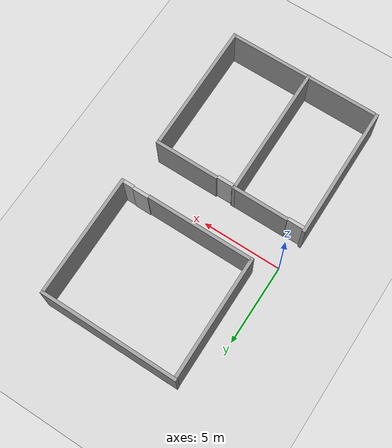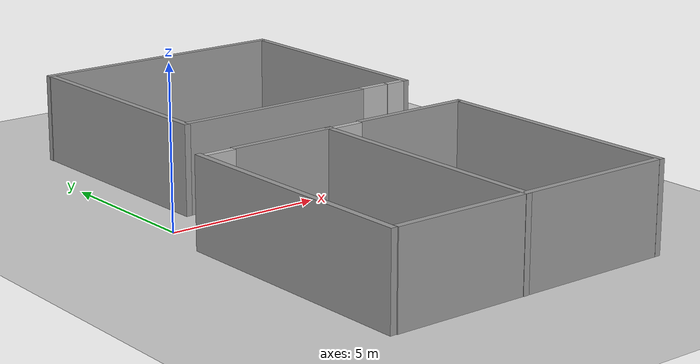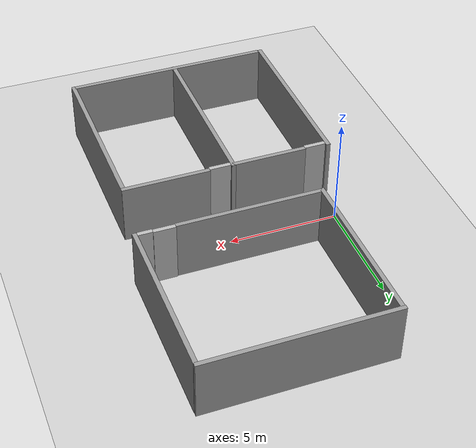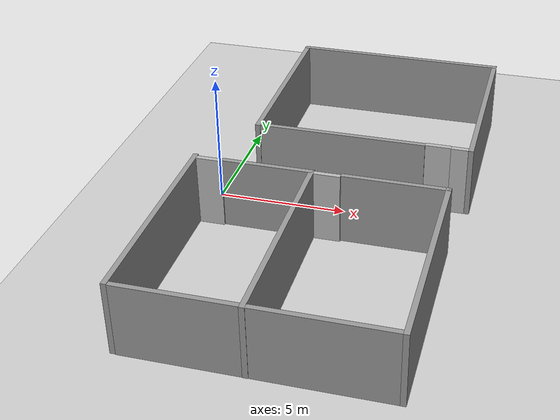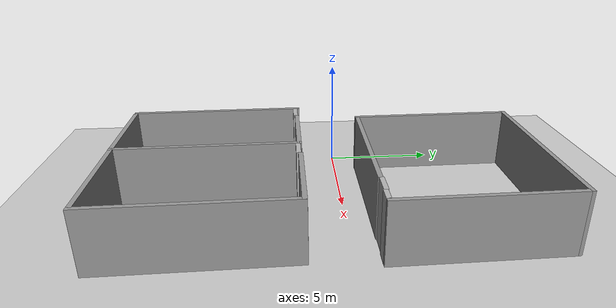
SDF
<sdf version="1.6">
 <world name="default">
  <light name="sun" type="directional">
   <pose>0 0 10 0 -0 0</pose>
   <diffuse>0.8 0.8 0.8 1</diffuse>
   <specular>0.2 0.2 0.2 1</specular>
   <attenuation>
    <range>1000</range>
    <constant>0.9</constant>
    <linear>0.01</linear>
    <quadratic>0.001</quadratic>
   </attenuation>
   <direction>-0.5 0.1 -0.9</direction>
  </light>
  <model name="ground_plane">
   <static>1</static>
   <link name="link">
    <collision name="collision">
     <geometry><plane><normal>0 0 1</normal><size>100 100</size></plane></geometry>
     <surface><friction><ode><mu>100</mu><mu2>50</mu2></ode></friction></surface>
    </collision>
    <visual name="visual">
     <cast_shadows>0</cast_shadows>
     <geometry><plane><normal>0 0 1</normal><size>100 100</size></plane></geometry>
     <material>
      <script><uri>file://media/materials/scripts/gazebo.material</uri><name>Gazebo/Grey</name></script>
     </material>
    </visual>
    <velocity_decay><linear>0</linear><angular>0</angular></velocity_decay>
   </link>
  </model>
  <model name="920_outside_wall">
   <static>1</static>
   <link name="link">
    <pose>0 0 1.4 0 -0 0</pose>
    <collision name="collision"><geometry><box><size>8.58 0.2 2.8</size></box></geometry></collision>
    <visual name="visual">
     <cast_shadows>0</cast_shadows>
     <geometry><box><size>8.58 0.2 2.8</size></box></geometry>
     <material>
      <script>
       <uri>model://grey_wall/materials/scripts</uri>
       <uri>model://grey_wall/materials/textures</uri>
       <name>vrc/grey_wall</name>
      </script>
     </material>
    </visual>
    <velocity_decay><linear>0</linear><angular>0</angular></velocity_decay>
   </link>
   <pose>5.35352 8.59761 0 0 -0 0</pose>
  </model>
  <model name="901_outside_wall">
   <static>1</static>
   <link name="link">
    <pose>0 0 1.4 0 -0 0</pose>
    <collision name="collision"><geometry><box><size>9.35 0.2 2.8</size></box></geometry></collision>
    <visual name="visual">
     <cast_shadows>0</cast_shadows>
     <geometry><box><size>9.35 0.2 2.8</size></box></geometry>
     <material>
      <script>
       <uri>model://grey_wall/materials/scripts</uri>
       <uri>model://grey_wall/materials/textures</uri>
       <name>vrc/grey_wall</name>
      </script>
     </material>
    </visual>
    <velocity_decay><linear>0</linear><angular>0</angular></velocity_decay>
   </link>
   <pose>4.59033 -9.88863 0 0 -0 0</pose>
  </model>
  <model name="ElevatorSideWall">
   <static>1</static>
   <link name="link">
    <pose>0 0 1.4 0 -0 1.58</pose>
    <collision name="collision"><geometry><box><size>8.26 0.2 2.8</size></box></geometry></collision>
    <visual name="visual">
     <cast_shadows>0</cast_shadows>
     <geometry><box><size>8.26 0.2 2.8</size></box></geometry>
     <material>
      <script>
       <uri>model://grey_wall/materials/scripts</uri>
       <uri>model://grey_wall/materials/textures</uri>
       <name>vrc/grey_wall</name>
      </script>
     </material>
    </visual>
    <velocity_decay><linear>0</linear><angular>0</angular></velocity_decay>
   </link>
   <pose>4.26434 -5.87139 0 0 -0 0</pose>
  </model>
  <model name="BalconySideWall">
   <static>1</static>
   <link name="link">
    <pose>0 0 1.4 0 -0 1.58</pose>
    <collision name="collision"><geometry><box><size>7.5 0.2 2.8</size></box></geometry></collision>
    <visual name="visual">
     <cast_shadows>0</cast_shadows>
     <geometry><box><size>7.5 0.2 2.8</size></box></geometry>
     <material>
      <script>
       <uri>model://grey_wall/materials/scripts</uri>
       <uri>model://grey_wall/materials/textures</uri>
       <name>vrc/grey_wall</name>
      </script>
     </material>
    </visual>
    <velocity_decay><linear>0</linear><angular>0</angular></velocity_decay>
   </link>
   <pose>9.59178 4.78635 0 0 -0 0</pose>
  </model>
  <model name="AisleSideWall">
   <static>1</static>
   <link name="link">
    <pose>0 0 1.4 0 -0 0</pose>
    <collision name="collision"><geometry><box><size>4.02 0.2 2.8</size></box></geometry></collision>
    <visual name="visual">
     <cast_shadows>0</cast_shadows>
     <geometry><box><size>4.02 0.2 2.8</size></box></geometry>
     <material>
      <script>
       <uri>model://grey_wall/materials/scripts</uri>
       <uri>model://grey_wall/materials/textures</uri>
       <name>vrc/grey_wall</name>
      </script>
     </material>
    </visual>
    <velocity_decay><linear>0</linear><angular>0</angular></velocity_decay>
   </link>
   <pose>7.3323 -1.82785 0 0 -0 0</pose>
  </model>
  <model name="AisleSideWall_920">
   <static>1</static>
   <link name="link">
    <pose>0 0 1.4 0 -0 0</pose>
    <collision name="collision"><geometry><box><size>6.6 0.2 2.8</size></box></geometry></collision>
    <visual name="visual">
     <cast_shadows>0</cast_shadows>
     <geometry><box><size>6.6 0.2 2.8</size></box></geometry>
     <material>
      <script>
       <uri>model://grey_wall/materials/scripts</uri>
       <uri>model://grey_wall/materials/textures</uri>
       <name>vrc/grey_wall</name>
      </script>
     </material>
    </visual>
    <velocity_decay><linear>0</linear><angular>0</angular></velocity_decay>
   </link>
   <pose>4.57782 1.11977 0 0 -0 0</pose>
  </model>
  <model name="Door">
   <static>1</static>
   <link name="link">
    <pose>0 0 1.4 0 -0 0</pose>
    <collision name="collision"><geometry><box><size>1 0.2 2.8</size></box></geometry></collision>
    <visual name="visual">
     <cast_shadows>0</cast_shadows>
     <geometry><box><size>1 0.2 2.8</size></box></geometry>
     <material><script><uri>__default__</uri><name>__default__</name></script></material>
    </visual>
    <velocity_decay><linear>0</linear><angular>0</angular></velocity_decay>
   </link>
   <pose>8.3742 1.15966 0 0 -0 0</pose>
  </model>
  <model name="AisleSideSmallWall">
   <static>1</static>
   <link name="link">
    <pose>0 0 1.4 0 -0 0</pose>
    <collision name="collision"><geometry><box><size>0.66 0.2 2.8</size></box></geometry></collision>
    <visual name="visual">
     <cast_shadows>0</cast_shadows>
     <geometry><box><size>0.66 0.2 2.8</size></box></geometry>
     <material><script><uri>__default__</uri><name>__default__</name></script></material>
    </visual>
    <velocity_decay><linear>0</linear><angular>0</angular></velocity_decay>
   </link>
   <pose>9.19552 1.12866 0.004442 0 -0 0</pose>
  </model>
  <model name="920ElevatorSideWall">
   <static>1</static>
   <link name="link">
    <pose>0 0 1.4 0 -0 1.58</pose>
    <collision name="collision"><geometry><box><size>7.5 0.2 2.8</size></box></geometry></collision>
    <visual name="visual">
     <cast_shadows>0</cast_shadows>
     <geometry><box><size>7.5 0.2 2.8</size></box></geometry>
     <material>
      <script>
       <uri>model://grey_wall/materials/scripts</uri>
       <uri>model://grey_wall/materials/textures</uri>
       <name>vrc/grey_wall</name>
      </script>
     </material>
    </visual>
    <velocity_decay><linear>0</linear><angular>0</angular></velocity_decay>
   </link>
   <pose>1.21734 4.75497 0 0 -0 0</pose>
  </model>
  <model name="Door_901">
   <static>1</static>
   <link name="link">
    <pose>0 0 1.4 0 -0 0</pose>
    <collision name="collision"><geometry><box><size>1 0.2 2.8</size></box></geometry></collision>
    <visual name="visual">
     <cast_shadows>0</cast_shadows>
     <geometry><box><size>1 0.2 2.8</size></box></geometry>
     <material><script><uri>__default__</uri><name>__default__</name></script></material>
    </visual>
    <velocity_decay><linear>0</linear><angular>0</angular></velocity_decay>
   </link>
   <pose>4.83201 -1.90718 0 0 -0 0</pose>
  </model>
  <model name="AisleSideWall_clone">
   <static>1</static>
   <link name="link">
    <pose>0 0 1.4 0 -0 0</pose>
    <collision name="collision"><geometry><box><size>3.54 0.2 2.8</size></box></geometry></collision>
    <visual name="visual">
     <cast_shadows>0</cast_shadows>
     <geometry><box><size>3.54 0.2 2.8</size></box></geometry>
     <material>
      <script>
       <uri>model://grey_wall/materials/scripts</uri>
       <uri>model://grey_wall/materials/textures</uri>
       <name>vrc/grey_wall</name>
      </script>
     </material>
    </visual>
    <velocity_decay><linear>0</linear><angular>0</angular></velocity_decay>
   </link>
   <pose>2.57422 -1.84984 0 0 -0 0</pose>
  </model>
  <model name="901OutSideWall">
   <static>1</static>
   <link name="link">
    <pose>0 0 1.4 0 -0 1.58</pose>
    <collision name="collision"><geometry><box><size>8.26 0.2 2.8</size></box></geometry></collision>
    <visual name="visual">
     <cast_shadows>0</cast_shadows>
     <geometry><box><size>8.26 0.2 2.8</size></box></geometry>
     <material>
      <script>
       <uri>model://grey_wall/materials/scripts</uri>
       <uri>model://grey_wall/materials/textures</uri>
       <name>vrc/grey_wall</name>
      </script>
     </material>
    </visual>
    <velocity_decay><linear>0</linear><angular>0</angular></velocity_decay>
   </link>
   <pose>9.28686 -5.8613 0 0 -0 0</pose>
  </model>
  <model name="902Door">
   <static>1</static>
   <link name="link">
    <pose>0 0 1.4 0 -0 0</pose>
    <collision name="collision"><geometry><box><size>1 0.2 2.8</size></box></geometry></collision>
    <visual name="visual">
     <cast_shadows>0</cast_shadows>
     <geometry><box><size>1 0.2 2.8</size></box></geometry>
     <material><script><uri>__default__</uri><name>__default__</name></script></material>
    </visual>
    <velocity_decay><linear>0</linear><angular>0</angular></velocity_decay>
   </link>
   <pose>0.314918 -1.91199 0 0 -0 0</pose>
  </model>
  <model name="902ElevatorSideWall">
   <static>1</static>
   <link name="link">
    <pose>0 0 1.4 0 -0 1.58</pose>
    <collision name="collision"><geometry><box><size>8.26 0.2 2.8</size></box></geometry></collision>
    <visual name="visual">
     <cast_shadows>0</cast_shadows>
     <geometry><box><size>8.26 0.2 2.8</size></box></geometry>
     <material>
      <script>
       <uri>model://grey_wall/materials/scripts</uri>
       <uri>model://grey_wall/materials/textures</uri>
       <name>vrc/grey_wall</name>
      </script>
     </material>
    </visual>
    <velocity_decay><linear>0</linear><angular>0</angular></velocity_decay>
   </link>
   <pose>-0.234133 -5.83658 0 0 -0 0</pose>
  </model>
  <gravity>0 0 -9.8</gravity>
  <magnetic_field>6e-06 2.3e-05 -4.2e-05</magnetic_field>
  <atmosphere type="adiabatic"/>
  <physics name="default_physics" default="0" type="ode">
   <max_step_size>0.001</max_step_size>
   <real_time_factor>1</real_time_factor>
   <real_time_update_rate>1000</real_time_update_rate>
  </physics>
  <scene><ambient>0.4 0.4 0.4 1</ambient><background>0.7 0.7 0.7 1</background><shadows>1</shadows></scene>
  <spherical_coordinates>
   <surface_model>EARTH_WGS84</surface_model>
   <latitude_deg>0</latitude_deg>
   <longitude_deg>0</longitude_deg>
   <elevation>0</elevation>
   <heading_deg>0</heading_deg>
  </spherical_coordinates>
 </world>
</sdf>
